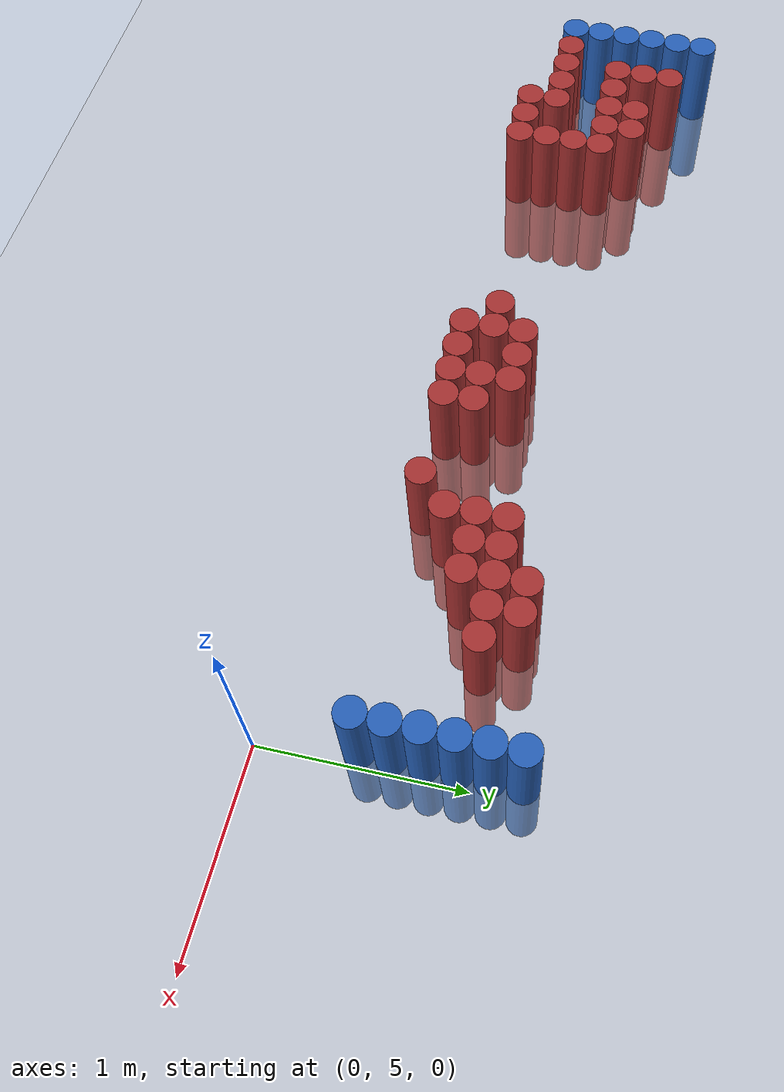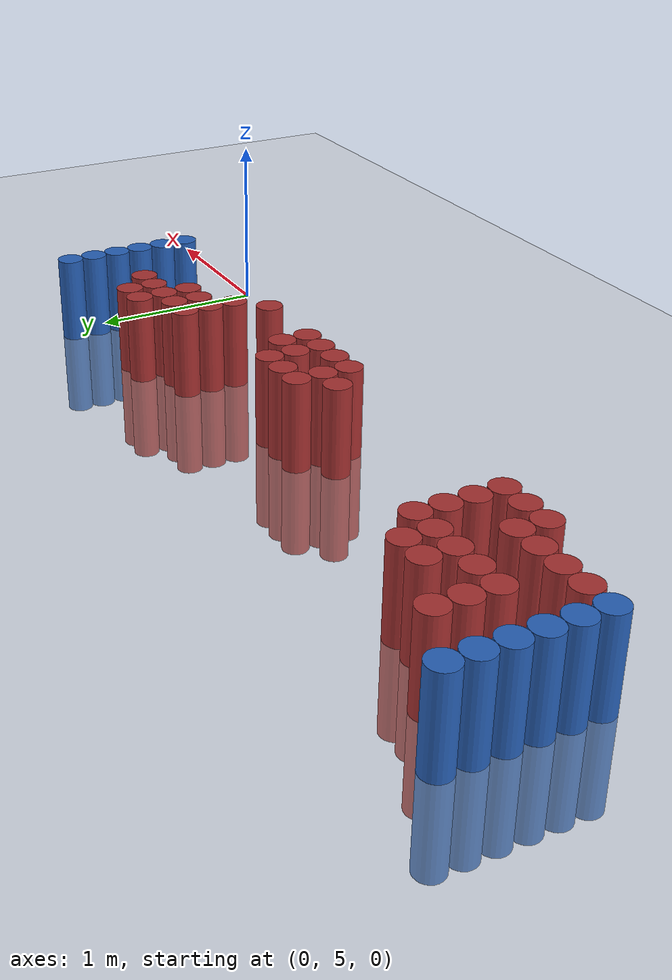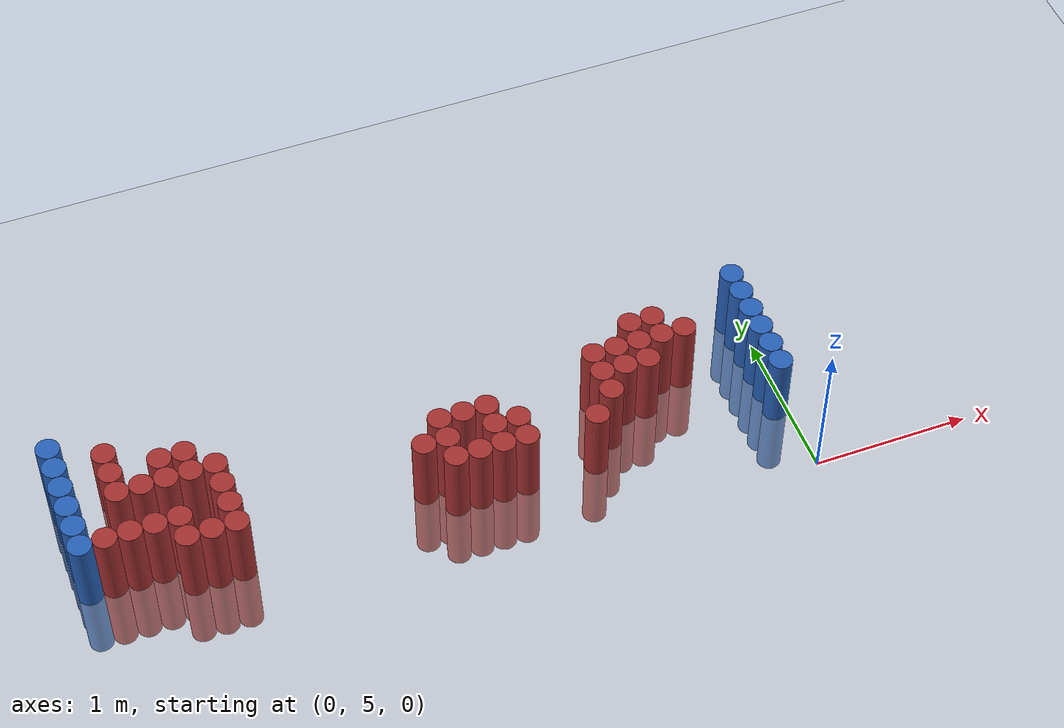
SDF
<sdf version="1.6">
 <world name="default">
  <model name="ground_plane">
   <static>1</static>
   <link name="link">
    <collision name="collision">
     <geometry><plane><normal>0 0 1</normal><size>100 100</size></plane></geometry>
     <surface><friction><ode><mu>100</mu><mu2>50</mu2></ode></friction></surface>
    </collision>
    <visual name="visual">
     <cast_shadows>0</cast_shadows>
     <geometry><plane><normal>0 0 1</normal><size>100 100</size></plane></geometry>
     <material>
      <script><uri>file://media/materials/scripts/gazebo.material</uri><name>Gazebo/Grey</name></script>
     </material>
    </visual>
   </link>
  </model>
  <model name="unit_cylinder_99">
   <static>1</static>
   <pose>-4.425000 5.625000 0.000000 0.000000 0.000000 0.000000</pose>
   <link name="link">
    <inertial>
     <mass>1</mass>
     <inertia><ixx>0.145833</ixx><ixy>0</ixy><ixz>0</ixz><iyy>0.145833</iyy><iyz>0</iyz><izz>0.125</izz></inertia>
    </inertial>
    <collision name="collision">
     <geometry><cylinder><radius>0.075000</radius><length>1</length></cylinder></geometry>
    </collision>
    <visual name="visual">
     <geometry><cylinder><radius>0.075000</radius><length>1</length></cylinder></geometry>
     <material>
      <ambient>0.152000 0.379000 0.720000 1</ambient>
      <diffuse>0.152000 0.379000 0.720000 1</diffuse>
     </material>
     <material>
      <script><name>Gazebo/Grey</name><uri>file://media/materials/scripts/gazebo.material</uri></script>
     </material>
    </visual>
   </link>
  </model>
  <model name="unit_cylinder_100">
   <static>1</static>
   <pose>-4.425000 5.775000 0.000000 0.000000 0.000000 0.000000</pose>
   <link name="link">
    <inertial>
     <mass>1</mass>
     <inertia><ixx>0.145833</ixx><ixy>0</ixy><ixz>0</ixz><iyy>0.145833</iyy><iyz>0</iyz><izz>0.125</izz></inertia>
    </inertial>
    <collision name="collision">
     <geometry><cylinder><radius>0.075000</radius><length>1</length></cylinder></geometry>
    </collision>
    <visual name="visual">
     <geometry><cylinder><radius>0.075000</radius><length>1</length></cylinder></geometry>
     <material>
      <ambient>0.152000 0.379000 0.720000 1</ambient>
      <diffuse>0.152000 0.379000 0.720000 1</diffuse>
     </material>
     <material>
      <script><name>Gazebo/Grey</name><uri>file://media/materials/scripts/gazebo.material</uri></script>
     </material>
    </visual>
   </link>
  </model>
  <model name="unit_cylinder_101">
   <static>1</static>
   <pose>-4.425000 5.925000 0.000000 0.000000 0.000000 0.000000</pose>
   <link name="link">
    <inertial>
     <mass>1</mass>
     <inertia><ixx>0.145833</ixx><ixy>0</ixy><ixz>0</ixz><iyy>0.145833</iyy><iyz>0</iyz><izz>0.125</izz></inertia>
    </inertial>
    <collision name="collision">
     <geometry><cylinder><radius>0.075000</radius><length>1</length></cylinder></geometry>
    </collision>
    <visual name="visual">
     <geometry><cylinder><radius>0.075000</radius><length>1</length></cylinder></geometry>
     <material>
      <ambient>0.152000 0.379000 0.720000 1</ambient>
      <diffuse>0.152000 0.379000 0.720000 1</diffuse>
     </material>
     <material>
      <script><name>Gazebo/Grey</name><uri>file://media/materials/scripts/gazebo.material</uri></script>
     </material>
    </visual>
   </link>
  </model>
  <model name="unit_cylinder_102">
   <static>1</static>
   <pose>-4.425000 6.075000 0.000000 0.000000 0.000000 0.000000</pose>
   <link name="link">
    <inertial>
     <mass>1</mass>
     <inertia><ixx>0.145833</ixx><ixy>0</ixy><ixz>0</ixz><iyy>0.145833</iyy><iyz>0</iyz><izz>0.125</izz></inertia>
    </inertial>
    <collision name="collision">
     <geometry><cylinder><radius>0.075000</radius><length>1</length></cylinder></geometry>
    </collision>
    <visual name="visual">
     <geometry><cylinder><radius>0.075000</radius><length>1</length></cylinder></geometry>
     <material>
      <ambient>0.152000 0.379000 0.720000 1</ambient>
      <diffuse>0.152000 0.379000 0.720000 1</diffuse>
     </material>
     <material>
      <script><name>Gazebo/Grey</name><uri>file://media/materials/scripts/gazebo.material</uri></script>
     </material>
    </visual>
   </link>
  </model>
  <model name="unit_cylinder_103">
   <static>1</static>
   <pose>-4.425000 6.225000 0.000000 0.000000 0.000000 0.000000</pose>
   <link name="link">
    <inertial>
     <mass>1</mass>
     <inertia><ixx>0.145833</ixx><ixy>0</ixy><ixz>0</ixz><iyy>0.145833</iyy><iyz>0</iyz><izz>0.125</izz></inertia>
    </inertial>
    <collision name="collision">
     <geometry><cylinder><radius>0.075000</radius><length>1</length></cylinder></geometry>
    </collision>
    <visual name="visual">
     <geometry><cylinder><radius>0.075000</radius><length>1</length></cylinder></geometry>
     <material>
      <ambient>0.152000 0.379000 0.720000 1</ambient>
      <diffuse>0.152000 0.379000 0.720000 1</diffuse>
     </material>
     <material>
      <script><name>Gazebo/Grey</name><uri>file://media/materials/scripts/gazebo.material</uri></script>
     </material>
    </visual>
   </link>
  </model>
  <model name="unit_cylinder_104">
   <static>1</static>
   <pose>-4.425000 6.375000 0.000000 0.000000 0.000000 0.000000</pose>
   <link name="link">
    <inertial>
     <mass>1</mass>
     <inertia><ixx>0.145833</ixx><ixy>0</ixy><ixz>0</ixz><iyy>0.145833</iyy><iyz>0</iyz><izz>0.125</izz></inertia>
    </inertial>
    <collision name="collision">
     <geometry><cylinder><radius>0.075000</radius><length>1</length></cylinder></geometry>
    </collision>
    <visual name="visual">
     <geometry><cylinder><radius>0.075000</radius><length>1</length></cylinder></geometry>
     <material>
      <ambient>0.152000 0.379000 0.720000 1</ambient>
      <diffuse>0.152000 0.379000 0.720000 1</diffuse>
     </material>
     <material>
      <script><name>Gazebo/Grey</name><uri>file://media/materials/scripts/gazebo.material</uri></script>
     </material>
    </visual>
   </link>
  </model>
  <model name="unit_cylinder_127">
   <static>1</static>
   <pose>-4.275000 5.625000 0.000000 0.000000 0.000000 0.000000</pose>
   <link name="link">
    <inertial>
     <mass>1</mass>
     <inertia><ixx>0.145833</ixx><ixy>0</ixy><ixz>0</ixz><iyy>0.145833</iyy><iyz>0</iyz><izz>0.125</izz></inertia>
    </inertial>
    <collision name="collision">
     <geometry><cylinder><radius>0.075000</radius><length>1</length></cylinder></geometry>
    </collision>
    <visual name="visual">
     <geometry><cylinder><radius>0.075000</radius><length>1</length></cylinder></geometry>
     <material>
      <ambient>0.648000 0.192000 0.192000 1</ambient>
      <diffuse>0.648000 0.192000 0.192000 1</diffuse>
     </material>
     <material>
      <script><name>Gazebo/Grey</name><uri>file://media/materials/scripts/gazebo.material</uri></script>
     </material>
    </visual>
   </link>
  </model>
  <model name="unit_cylinder_140">
   <static>1</static>
   <pose>-4.125000 5.625000 0.000000 0.000000 0.000000 0.000000</pose>
   <link name="link">
    <inertial>
     <mass>1</mass>
     <inertia><ixx>0.145833</ixx><ixy>0</ixy><ixz>0</ixz><iyy>0.145833</iyy><iyz>0</iyz><izz>0.125</izz></inertia>
    </inertial>
    <collision name="collision">
     <geometry><cylinder><radius>0.075000</radius><length>1</length></cylinder></geometry>
    </collision>
    <visual name="visual">
     <geometry><cylinder><radius>0.075000</radius><length>1</length></cylinder></geometry>
     <material>
      <ambient>0.648000 0.192000 0.192000 1</ambient>
      <diffuse>0.648000 0.192000 0.192000 1</diffuse>
     </material>
     <material>
      <script><name>Gazebo/Grey</name><uri>file://media/materials/scripts/gazebo.material</uri></script>
     </material>
    </visual>
   </link>
  </model>
  <model name="unit_cylinder_141">
   <static>1</static>
   <pose>-4.125000 5.925000 0.000000 0.000000 0.000000 0.000000</pose>
   <link name="link">
    <inertial>
     <mass>1</mass>
     <inertia><ixx>0.145833</ixx><ixy>0</ixy><ixz>0</ixz><iyy>0.145833</iyy><iyz>0</iyz><izz>0.125</izz></inertia>
    </inertial>
    <collision name="collision">
     <geometry><cylinder><radius>0.075000</radius><length>1</length></cylinder></geometry>
    </collision>
    <visual name="visual">
     <geometry><cylinder><radius>0.075000</radius><length>1</length></cylinder></geometry>
     <material>
      <ambient>0.648000 0.192000 0.192000 1</ambient>
      <diffuse>0.648000 0.192000 0.192000 1</diffuse>
     </material>
     <material>
      <script><name>Gazebo/Grey</name><uri>file://media/materials/scripts/gazebo.material</uri></script>
     </material>
    </visual>
   </link>
  </model>
  <model name="unit_cylinder_142">
   <static>1</static>
   <pose>-4.125000 6.075000 0.000000 0.000000 0.000000 0.000000</pose>
   <link name="link">
    <inertial>
     <mass>1</mass>
     <inertia><ixx>0.145833</ixx><ixy>0</ixy><ixz>0</ixz><iyy>0.145833</iyy><iyz>0</iyz><izz>0.125</izz></inertia>
    </inertial>
    <collision name="collision">
     <geometry><cylinder><radius>0.075000</radius><length>1</length></cylinder></geometry>
    </collision>
    <visual name="visual">
     <geometry><cylinder><radius>0.075000</radius><length>1</length></cylinder></geometry>
     <material>
      <ambient>0.648000 0.192000 0.192000 1</ambient>
      <diffuse>0.648000 0.192000 0.192000 1</diffuse>
     </material>
     <material>
      <script><name>Gazebo/Grey</name><uri>file://media/materials/scripts/gazebo.material</uri></script>
     </material>
    </visual>
   </link>
  </model>
  <model name="unit_cylinder_143">
   <static>1</static>
   <pose>-4.125000 6.225000 0.000000 0.000000 0.000000 0.000000</pose>
   <link name="link">
    <inertial>
     <mass>1</mass>
     <inertia><ixx>0.145833</ixx><ixy>0</ixy><ixz>0</ixz><iyy>0.145833</iyy><iyz>0</iyz><izz>0.125</izz></inertia>
    </inertial>
    <collision name="collision">
     <geometry><cylinder><radius>0.075000</radius><length>1</length></cylinder></geometry>
    </collision>
    <visual name="visual">
     <geometry><cylinder><radius>0.075000</radius><length>1</length></cylinder></geometry>
     <material>
      <ambient>0.648000 0.192000 0.192000 1</ambient>
      <diffuse>0.648000 0.192000 0.192000 1</diffuse>
     </material>
     <material>
      <script><name>Gazebo/Grey</name><uri>file://media/materials/scripts/gazebo.material</uri></script>
     </material>
    </visual>
   </link>
  </model>
  <model name="unit_cylinder_153">
   <static>1</static>
   <pose>-3.975000 5.625000 0.000000 0.000000 0.000000 0.000000</pose>
   <link name="link">
    <inertial>
     <mass>1</mass>
     <inertia><ixx>0.145833</ixx><ixy>0</ixy><ixz>0</ixz><iyy>0.145833</iyy><iyz>0</iyz><izz>0.125</izz></inertia>
    </inertial>
    <collision name="collision">
     <geometry><cylinder><radius>0.075000</radius><length>1</length></cylinder></geometry>
    </collision>
    <visual name="visual">
     <geometry><cylinder><radius>0.075000</radius><length>1</length></cylinder></geometry>
     <material>
      <ambient>0.648000 0.192000 0.192000 1</ambient>
      <diffuse>0.648000 0.192000 0.192000 1</diffuse>
     </material>
     <material>
      <script><name>Gazebo/Grey</name><uri>file://media/materials/scripts/gazebo.material</uri></script>
     </material>
    </visual>
   </link>
  </model>
  <model name="unit_cylinder_154">
   <static>1</static>
   <pose>-3.975000 5.925000 0.000000 0.000000 0.000000 0.000000</pose>
   <link name="link">
    <inertial>
     <mass>1</mass>
     <inertia><ixx>0.145833</ixx><ixy>0</ixy><ixz>0</ixz><iyy>0.145833</iyy><iyz>0</iyz><izz>0.125</izz></inertia>
    </inertial>
    <collision name="collision">
     <geometry><cylinder><radius>0.075000</radius><length>1</length></cylinder></geometry>
    </collision>
    <visual name="visual">
     <geometry><cylinder><radius>0.075000</radius><length>1</length></cylinder></geometry>
     <material>
      <ambient>0.648000 0.192000 0.192000 1</ambient>
      <diffuse>0.648000 0.192000 0.192000 1</diffuse>
     </material>
     <material>
      <script><name>Gazebo/Grey</name><uri>file://media/materials/scripts/gazebo.material</uri></script>
     </material>
    </visual>
   </link>
  </model>
  <model name="unit_cylinder_159">
   <static>1</static>
   <pose>-3.825000 5.475000 0.000000 0.000000 0.000000 0.000000</pose>
   <link name="link">
    <inertial>
     <mass>1</mass>
     <inertia><ixx>0.145833</ixx><ixy>0</ixy><ixz>0</ixz><iyy>0.145833</iyy><iyz>0</iyz><izz>0.125</izz></inertia>
    </inertial>
    <collision name="collision">
     <geometry><cylinder><radius>0.075000</radius><length>1</length></cylinder></geometry>
    </collision>
    <visual name="visual">
     <geometry><cylinder><radius>0.075000</radius><length>1</length></cylinder></geometry>
     <material>
      <ambient>0.648000 0.192000 0.192000 1</ambient>
      <diffuse>0.648000 0.192000 0.192000 1</diffuse>
     </material>
     <material>
      <script><name>Gazebo/Grey</name><uri>file://media/materials/scripts/gazebo.material</uri></script>
     </material>
    </visual>
   </link>
  </model>
  <model name="unit_cylinder_160">
   <static>1</static>
   <pose>-3.825000 5.625000 0.000000 0.000000 0.000000 0.000000</pose>
   <link name="link">
    <inertial>
     <mass>1</mass>
     <inertia><ixx>0.145833</ixx><ixy>0</ixy><ixz>0</ixz><iyy>0.145833</iyy><iyz>0</iyz><izz>0.125</izz></inertia>
    </inertial>
    <collision name="collision">
     <geometry><cylinder><radius>0.075000</radius><length>1</length></cylinder></geometry>
    </collision>
    <visual name="visual">
     <geometry><cylinder><radius>0.075000</radius><length>1</length></cylinder></geometry>
     <material>
      <ambient>0.648000 0.192000 0.192000 1</ambient>
      <diffuse>0.648000 0.192000 0.192000 1</diffuse>
     </material>
     <material>
      <script><name>Gazebo/Grey</name><uri>file://media/materials/scripts/gazebo.material</uri></script>
     </material>
    </visual>
   </link>
  </model>
  <model name="unit_cylinder_161">
   <static>1</static>
   <pose>-3.825000 5.925000 0.000000 0.000000 0.000000 0.000000</pose>
   <link name="link">
    <inertial>
     <mass>1</mass>
     <inertia><ixx>0.145833</ixx><ixy>0</ixy><ixz>0</ixz><iyy>0.145833</iyy><iyz>0</iyz><izz>0.125</izz></inertia>
    </inertial>
    <collision name="collision">
     <geometry><cylinder><radius>0.075000</radius><length>1</length></cylinder></geometry>
    </collision>
    <visual name="visual">
     <geometry><cylinder><radius>0.075000</radius><length>1</length></cylinder></geometry>
     <material>
      <ambient>0.648000 0.192000 0.192000 1</ambient>
      <diffuse>0.648000 0.192000 0.192000 1</diffuse>
     </material>
     <material>
      <script><name>Gazebo/Grey</name><uri>file://media/materials/scripts/gazebo.material</uri></script>
     </material>
    </visual>
   </link>
  </model>
  <model name="unit_cylinder_162">
   <static>1</static>
   <pose>-3.825000 6.075000 0.000000 0.000000 0.000000 0.000000</pose>
   <link name="link">
    <inertial>
     <mass>1</mass>
     <inertia><ixx>0.145833</ixx><ixy>0</ixy><ixz>0</ixz><iyy>0.145833</iyy><iyz>0</iyz><izz>0.125</izz></inertia>
    </inertial>
    <collision name="collision">
     <geometry><cylinder><radius>0.075000</radius><length>1</length></cylinder></geometry>
    </collision>
    <visual name="visual">
     <geometry><cylinder><radius>0.075000</radius><length>1</length></cylinder></geometry>
     <material>
      <ambient>0.648000 0.192000 0.192000 1</ambient>
      <diffuse>0.648000 0.192000 0.192000 1</diffuse>
     </material>
     <material>
      <script><name>Gazebo/Grey</name><uri>file://media/materials/scripts/gazebo.material</uri></script>
     </material>
    </visual>
   </link>
  </model>
  <model name="unit_cylinder_164">
   <static>1</static>
   <pose>-3.675000 5.475000 0.000000 0.000000 0.000000 0.000000</pose>
   <link name="link">
    <inertial>
     <mass>1</mass>
     <inertia><ixx>0.145833</ixx><ixy>0</ixy><ixz>0</ixz><iyy>0.145833</iyy><iyz>0</iyz><izz>0.125</izz></inertia>
    </inertial>
    <collision name="collision">
     <geometry><cylinder><radius>0.075000</radius><length>1</length></cylinder></geometry>
    </collision>
    <visual name="visual">
     <geometry><cylinder><radius>0.075000</radius><length>1</length></cylinder></geometry>
     <material>
      <ambient>0.648000 0.192000 0.192000 1</ambient>
      <diffuse>0.648000 0.192000 0.192000 1</diffuse>
     </material>
     <material>
      <script><name>Gazebo/Grey</name><uri>file://media/materials/scripts/gazebo.material</uri></script>
     </material>
    </visual>
   </link>
  </model>
  <model name="unit_cylinder_165">
   <static>1</static>
   <pose>-3.675000 5.925000 0.000000 0.000000 0.000000 0.000000</pose>
   <link name="link">
    <inertial>
     <mass>1</mass>
     <inertia><ixx>0.145833</ixx><ixy>0</ixy><ixz>0</ixz><iyy>0.145833</iyy><iyz>0</iyz><izz>0.125</izz></inertia>
    </inertial>
    <collision name="collision">
     <geometry><cylinder><radius>0.075000</radius><length>1</length></cylinder></geometry>
    </collision>
    <visual name="visual">
     <geometry><cylinder><radius>0.075000</radius><length>1</length></cylinder></geometry>
     <material>
      <ambient>0.648000 0.192000 0.192000 1</ambient>
      <diffuse>0.648000 0.192000 0.192000 1</diffuse>
     </material>
     <material>
      <script><name>Gazebo/Grey</name><uri>file://media/materials/scripts/gazebo.material</uri></script>
     </material>
    </visual>
   </link>
  </model>
  <model name="unit_cylinder_166">
   <static>1</static>
   <pose>-3.675000 6.075000 0.000000 0.000000 0.000000 0.000000</pose>
   <link name="link">
    <inertial>
     <mass>1</mass>
     <inertia><ixx>0.145833</ixx><ixy>0</ixy><ixz>0</ixz><iyy>0.145833</iyy><iyz>0</iyz><izz>0.125</izz></inertia>
    </inertial>
    <collision name="collision">
     <geometry><cylinder><radius>0.075000</radius><length>1</length></cylinder></geometry>
    </collision>
    <visual name="visual">
     <geometry><cylinder><radius>0.075000</radius><length>1</length></cylinder></geometry>
     <material>
      <ambient>0.648000 0.192000 0.192000 1</ambient>
      <diffuse>0.648000 0.192000 0.192000 1</diffuse>
     </material>
     <material>
      <script><name>Gazebo/Grey</name><uri>file://media/materials/scripts/gazebo.material</uri></script>
     </material>
    </visual>
   </link>
  </model>
  <model name="unit_cylinder_172">
   <static>1</static>
   <pose>-3.525000 5.475000 0.000000 0.000000 0.000000 0.000000</pose>
   <link name="link">
    <inertial>
     <mass>1</mass>
     <inertia><ixx>0.145833</ixx><ixy>0</ixy><ixz>0</ixz><iyy>0.145833</iyy><iyz>0</iyz><izz>0.125</izz></inertia>
    </inertial>
    <collision name="collision">
     <geometry><cylinder><radius>0.075000</radius><length>1</length></cylinder></geometry>
    </collision>
    <visual name="visual">
     <geometry><cylinder><radius>0.075000</radius><length>1</length></cylinder></geometry>
     <material>
      <ambient>0.648000 0.192000 0.192000 1</ambient>
      <diffuse>0.648000 0.192000 0.192000 1</diffuse>
     </material>
     <material>
      <script><name>Gazebo/Grey</name><uri>file://media/materials/scripts/gazebo.material</uri></script>
     </material>
    </visual>
   </link>
  </model>
  <model name="unit_cylinder_173">
   <static>1</static>
   <pose>-3.525000 5.625000 0.000000 0.000000 0.000000 0.000000</pose>
   <link name="link">
    <inertial>
     <mass>1</mass>
     <inertia><ixx>0.145833</ixx><ixy>0</ixy><ixz>0</ixz><iyy>0.145833</iyy><iyz>0</iyz><izz>0.125</izz></inertia>
    </inertial>
    <collision name="collision">
     <geometry><cylinder><radius>0.075000</radius><length>1</length></cylinder></geometry>
    </collision>
    <visual name="visual">
     <geometry><cylinder><radius>0.075000</radius><length>1</length></cylinder></geometry>
     <material>
      <ambient>0.648000 0.192000 0.192000 1</ambient>
      <diffuse>0.648000 0.192000 0.192000 1</diffuse>
     </material>
     <material>
      <script><name>Gazebo/Grey</name><uri>file://media/materials/scripts/gazebo.material</uri></script>
     </material>
    </visual>
   </link>
  </model>
  <model name="unit_cylinder_174">
   <static>1</static>
   <pose>-3.525000 5.775000 0.000000 0.000000 0.000000 0.000000</pose>
   <link name="link">
    <inertial>
     <mass>1</mass>
     <inertia><ixx>0.145833</ixx><ixy>0</ixy><ixz>0</ixz><iyy>0.145833</iyy><iyz>0</iyz><izz>0.125</izz></inertia>
    </inertial>
    <collision name="collision">
     <geometry><cylinder><radius>0.075000</radius><length>1</length></cylinder></geometry>
    </collision>
    <visual name="visual">
     <geometry><cylinder><radius>0.075000</radius><length>1</length></cylinder></geometry>
     <material>
      <ambient>0.648000 0.192000 0.192000 1</ambient>
      <diffuse>0.648000 0.192000 0.192000 1</diffuse>
     </material>
     <material>
      <script><name>Gazebo/Grey</name><uri>file://media/materials/scripts/gazebo.material</uri></script>
     </material>
    </visual>
   </link>
  </model>
  <model name="unit_cylinder_175">
   <static>1</static>
   <pose>-3.525000 5.925000 0.000000 0.000000 0.000000 0.000000</pose>
   <link name="link">
    <inertial>
     <mass>1</mass>
     <inertia><ixx>0.145833</ixx><ixy>0</ixy><ixz>0</ixz><iyy>0.145833</iyy><iyz>0</iyz><izz>0.125</izz></inertia>
    </inertial>
    <collision name="collision">
     <geometry><cylinder><radius>0.075000</radius><length>1</length></cylinder></geometry>
    </collision>
    <visual name="visual">
     <geometry><cylinder><radius>0.075000</radius><length>1</length></cylinder></geometry>
     <material>
      <ambient>0.648000 0.192000 0.192000 1</ambient>
      <diffuse>0.648000 0.192000 0.192000 1</diffuse>
     </material>
     <material>
      <script><name>Gazebo/Grey</name><uri>file://media/materials/scripts/gazebo.material</uri></script>
     </material>
    </visual>
   </link>
  </model>
  <model name="unit_cylinder_213">
   <static>1</static>
   <pose>-2.325000 5.625000 0.000000 0.000000 0.000000 0.000000</pose>
   <link name="link">
    <inertial>
     <mass>1</mass>
     <inertia><ixx>0.145833</ixx><ixy>0</ixy><ixz>0</ixz><iyy>0.145833</iyy><iyz>0</iyz><izz>0.125</izz></inertia>
    </inertial>
    <collision name="collision">
     <geometry><cylinder><radius>0.075000</radius><length>1</length></cylinder></geometry>
    </collision>
    <visual name="visual">
     <geometry><cylinder><radius>0.075000</radius><length>1</length></cylinder></geometry>
     <material>
      <ambient>0.648000 0.192000 0.192000 1</ambient>
      <diffuse>0.648000 0.192000 0.192000 1</diffuse>
     </material>
     <material>
      <script><name>Gazebo/Grey</name><uri>file://media/materials/scripts/gazebo.material</uri></script>
     </material>
    </visual>
   </link>
  </model>
  <model name="unit_cylinder_218">
   <static>1</static>
   <pose>-2.175000 5.475000 0.000000 0.000000 0.000000 0.000000</pose>
   <link name="link">
    <inertial>
     <mass>1</mass>
     <inertia><ixx>0.145833</ixx><ixy>0</ixy><ixz>0</ixz><iyy>0.145833</iyy><iyz>0</iyz><izz>0.125</izz></inertia>
    </inertial>
    <collision name="collision">
     <geometry><cylinder><radius>0.075000</radius><length>1</length></cylinder></geometry>
    </collision>
    <visual name="visual">
     <geometry><cylinder><radius>0.075000</radius><length>1</length></cylinder></geometry>
     <material>
      <ambient>0.648000 0.192000 0.192000 1</ambient>
      <diffuse>0.648000 0.192000 0.192000 1</diffuse>
     </material>
     <material>
      <script><name>Gazebo/Grey</name><uri>file://media/materials/scripts/gazebo.material</uri></script>
     </material>
    </visual>
   </link>
  </model>
  <model name="unit_cylinder_219">
   <static>1</static>
   <pose>-2.175000 5.625000 0.000000 0.000000 0.000000 0.000000</pose>
   <link name="link">
    <inertial>
     <mass>1</mass>
     <inertia><ixx>0.145833</ixx><ixy>0</ixy><ixz>0</ixz><iyy>0.145833</iyy><iyz>0</iyz><izz>0.125</izz></inertia>
    </inertial>
    <collision name="collision">
     <geometry><cylinder><radius>0.075000</radius><length>1</length></cylinder></geometry>
    </collision>
    <visual name="visual">
     <geometry><cylinder><radius>0.075000</radius><length>1</length></cylinder></geometry>
     <material>
      <ambient>0.648000 0.192000 0.192000 1</ambient>
      <diffuse>0.648000 0.192000 0.192000 1</diffuse>
     </material>
     <material>
      <script><name>Gazebo/Grey</name><uri>file://media/materials/scripts/gazebo.material</uri></script>
     </material>
    </visual>
   </link>
  </model>
  <model name="unit_cylinder_220">
   <static>1</static>
   <pose>-2.175000 5.775000 0.000000 0.000000 0.000000 0.000000</pose>
   <link name="link">
    <inertial>
     <mass>1</mass>
     <inertia><ixx>0.145833</ixx><ixy>0</ixy><ixz>0</ixz><iyy>0.145833</iyy><iyz>0</iyz><izz>0.125</izz></inertia>
    </inertial>
    <collision name="collision">
     <geometry><cylinder><radius>0.075000</radius><length>1</length></cylinder></geometry>
    </collision>
    <visual name="visual">
     <geometry><cylinder><radius>0.075000</radius><length>1</length></cylinder></geometry>
     <material>
      <ambient>0.648000 0.192000 0.192000 1</ambient>
      <diffuse>0.648000 0.192000 0.192000 1</diffuse>
     </material>
     <material>
      <script><name>Gazebo/Grey</name><uri>file://media/materials/scripts/gazebo.material</uri></script>
     </material>
    </visual>
   </link>
  </model>
  <model name="unit_cylinder_225">
   <static>1</static>
   <pose>-2.025000 5.475000 0.000000 0.000000 0.000000 0.000000</pose>
   <link name="link">
    <inertial>
     <mass>1</mass>
     <inertia><ixx>0.145833</ixx><ixy>0</ixy><ixz>0</ixz><iyy>0.145833</iyy><iyz>0</iyz><izz>0.125</izz></inertia>
    </inertial>
    <collision name="collision">
     <geometry><cylinder><radius>0.075000</radius><length>1</length></cylinder></geometry>
    </collision>
    <visual name="visual">
     <geometry><cylinder><radius>0.075000</radius><length>1</length></cylinder></geometry>
     <material>
      <ambient>0.648000 0.192000 0.192000 1</ambient>
      <diffuse>0.648000 0.192000 0.192000 1</diffuse>
     </material>
     <material>
      <script><name>Gazebo/Grey</name><uri>file://media/materials/scripts/gazebo.material</uri></script>
     </material>
    </visual>
   </link>
  </model>
  <model name="unit_cylinder_226">
   <static>1</static>
   <pose>-2.025000 5.775000 0.000000 0.000000 0.000000 0.000000</pose>
   <link name="link">
    <inertial>
     <mass>1</mass>
     <inertia><ixx>0.145833</ixx><ixy>0</ixy><ixz>0</ixz><iyy>0.145833</iyy><iyz>0</iyz><izz>0.125</izz></inertia>
    </inertial>
    <collision name="collision">
     <geometry><cylinder><radius>0.075000</radius><length>1</length></cylinder></geometry>
    </collision>
    <visual name="visual">
     <geometry><cylinder><radius>0.075000</radius><length>1</length></cylinder></geometry>
     <material>
      <ambient>0.648000 0.192000 0.192000 1</ambient>
      <diffuse>0.648000 0.192000 0.192000 1</diffuse>
     </material>
     <material>
      <script><name>Gazebo/Grey</name><uri>file://media/materials/scripts/gazebo.material</uri></script>
     </material>
    </visual>
   </link>
  </model>
  <model name="unit_cylinder_235">
   <static>1</static>
   <pose>-1.875000 5.475000 0.000000 0.000000 0.000000 0.000000</pose>
   <link name="link">
    <inertial>
     <mass>1</mass>
     <inertia><ixx>0.145833</ixx><ixy>0</ixy><ixz>0</ixz><iyy>0.145833</iyy><iyz>0</iyz><izz>0.125</izz></inertia>
    </inertial>
    <collision name="collision">
     <geometry><cylinder><radius>0.075000</radius><length>1</length></cylinder></geometry>
    </collision>
    <visual name="visual">
     <geometry><cylinder><radius>0.075000</radius><length>1</length></cylinder></geometry>
     <material>
      <ambient>0.648000 0.192000 0.192000 1</ambient>
      <diffuse>0.648000 0.192000 0.192000 1</diffuse>
     </material>
     <material>
      <script><name>Gazebo/Grey</name><uri>file://media/materials/scripts/gazebo.material</uri></script>
     </material>
    </visual>
   </link>
  </model>
  <model name="unit_cylinder_236">
   <static>1</static>
   <pose>-1.875000 5.625000 0.000000 0.000000 0.000000 0.000000</pose>
   <link name="link">
    <inertial>
     <mass>1</mass>
     <inertia><ixx>0.145833</ixx><ixy>0</ixy><ixz>0</ixz><iyy>0.145833</iyy><iyz>0</iyz><izz>0.125</izz></inertia>
    </inertial>
    <collision name="collision">
     <geometry><cylinder><radius>0.075000</radius><length>1</length></cylinder></geometry>
    </collision>
    <visual name="visual">
     <geometry><cylinder><radius>0.075000</radius><length>1</length></cylinder></geometry>
     <material>
      <ambient>0.648000 0.192000 0.192000 1</ambient>
      <diffuse>0.648000 0.192000 0.192000 1</diffuse>
     </material>
     <material>
      <script><name>Gazebo/Grey</name><uri>file://media/materials/scripts/gazebo.material</uri></script>
     </material>
    </visual>
   </link>
  </model>
  <model name="unit_cylinder_237">
   <static>1</static>
   <pose>-1.875000 5.775000 0.000000 0.000000 0.000000 0.000000</pose>
   <link name="link">
    <inertial>
     <mass>1</mass>
     <inertia><ixx>0.145833</ixx><ixy>0</ixy><ixz>0</ixz><iyy>0.145833</iyy><iyz>0</iyz><izz>0.125</izz></inertia>
    </inertial>
    <collision name="collision">
     <geometry><cylinder><radius>0.075000</radius><length>1</length></cylinder></geometry>
    </collision>
    <visual name="visual">
     <geometry><cylinder><radius>0.075000</radius><length>1</length></cylinder></geometry>
     <material>
      <ambient>0.648000 0.192000 0.192000 1</ambient>
      <diffuse>0.648000 0.192000 0.192000 1</diffuse>
     </material>
     <material>
      <script><name>Gazebo/Grey</name><uri>file://media/materials/scripts/gazebo.material</uri></script>
     </material>
    </visual>
   </link>
  </model>
  <model name="unit_cylinder_244">
   <static>1</static>
   <pose>-1.725000 5.475000 0.000000 0.000000 0.000000 0.000000</pose>
   <link name="link">
    <inertial>
     <mass>1</mass>
     <inertia><ixx>0.145833</ixx><ixy>0</ixy><ixz>0</ixz><iyy>0.145833</iyy><iyz>0</iyz><izz>0.125</izz></inertia>
    </inertial>
    <collision name="collision">
     <geometry><cylinder><radius>0.075000</radius><length>1</length></cylinder></geometry>
    </collision>
    <visual name="visual">
     <geometry><cylinder><radius>0.075000</radius><length>1</length></cylinder></geometry>
     <material>
      <ambient>0.648000 0.192000 0.192000 1</ambient>
      <diffuse>0.648000 0.192000 0.192000 1</diffuse>
     </material>
     <material>
      <script><name>Gazebo/Grey</name><uri>file://media/materials/scripts/gazebo.material</uri></script>
     </material>
    </visual>
   </link>
  </model>
  <model name="unit_cylinder_245">
   <static>1</static>
   <pose>-1.725000 5.625000 0.000000 0.000000 0.000000 0.000000</pose>
   <link name="link">
    <inertial>
     <mass>1</mass>
     <inertia><ixx>0.145833</ixx><ixy>0</ixy><ixz>0</ixz><iyy>0.145833</iyy><iyz>0</iyz><izz>0.125</izz></inertia>
    </inertial>
    <collision name="collision">
     <geometry><cylinder><radius>0.075000</radius><length>1</length></cylinder></geometry>
    </collision>
    <visual name="visual">
     <geometry><cylinder><radius>0.075000</radius><length>1</length></cylinder></geometry>
     <material>
      <ambient>0.648000 0.192000 0.192000 1</ambient>
      <diffuse>0.648000 0.192000 0.192000 1</diffuse>
     </material>
     <material>
      <script><name>Gazebo/Grey</name><uri>file://media/materials/scripts/gazebo.material</uri></script>
     </material>
    </visual>
   </link>
  </model>
  <model name="unit_cylinder_251">
   <static>1</static>
   <pose>-1.275000 5.475000 0.000000 0.000000 0.000000 0.000000</pose>
   <link name="link">
    <inertial>
     <mass>1</mass>
     <inertia><ixx>0.145833</ixx><ixy>0</ixy><ixz>0</ixz><iyy>0.145833</iyy><iyz>0</iyz><izz>0.125</izz></inertia>
    </inertial>
    <collision name="collision">
     <geometry><cylinder><radius>0.075000</radius><length>1</length></cylinder></geometry>
    </collision>
    <visual name="visual">
     <geometry><cylinder><radius>0.075000</radius><length>1</length></cylinder></geometry>
     <material>
      <ambient>0.648000 0.192000 0.192000 1</ambient>
      <diffuse>0.648000 0.192000 0.192000 1</diffuse>
     </material>
     <material>
      <script><name>Gazebo/Grey</name><uri>file://media/materials/scripts/gazebo.material</uri></script>
     </material>
    </visual>
   </link>
  </model>
  <model name="unit_cylinder_253">
   <static>1</static>
   <pose>-1.125000 5.625000 0.000000 0.000000 0.000000 0.000000</pose>
   <link name="link">
    <inertial>
     <mass>1</mass>
     <inertia><ixx>0.145833</ixx><ixy>0</ixy><ixz>0</ixz><iyy>0.145833</iyy><iyz>0</iyz><izz>0.125</izz></inertia>
    </inertial>
    <collision name="collision">
     <geometry><cylinder><radius>0.075000</radius><length>1</length></cylinder></geometry>
    </collision>
    <visual name="visual">
     <geometry><cylinder><radius>0.075000</radius><length>1</length></cylinder></geometry>
     <material>
      <ambient>0.648000 0.192000 0.192000 1</ambient>
      <diffuse>0.648000 0.192000 0.192000 1</diffuse>
     </material>
     <material>
      <script><name>Gazebo/Grey</name><uri>file://media/materials/scripts/gazebo.material</uri></script>
     </material>
    </visual>
   </link>
  </model>
  <model name="unit_cylinder_254">
   <static>1</static>
   <pose>-1.125000 5.775000 0.000000 0.000000 0.000000 0.000000</pose>
   <link name="link">
    <inertial>
     <mass>1</mass>
     <inertia><ixx>0.145833</ixx><ixy>0</ixy><ixz>0</ixz><iyy>0.145833</iyy><iyz>0</iyz><izz>0.125</izz></inertia>
    </inertial>
    <collision name="collision">
     <geometry><cylinder><radius>0.075000</radius><length>1</length></cylinder></geometry>
    </collision>
    <visual name="visual">
     <geometry><cylinder><radius>0.075000</radius><length>1</length></cylinder></geometry>
     <material>
      <ambient>0.648000 0.192000 0.192000 1</ambient>
      <diffuse>0.648000 0.192000 0.192000 1</diffuse>
     </material>
     <material>
      <script><name>Gazebo/Grey</name><uri>file://media/materials/scripts/gazebo.material</uri></script>
     </material>
    </visual>
   </link>
  </model>
  <model name="unit_cylinder_255">
   <static>1</static>
   <pose>-1.125000 5.925000 0.000000 0.000000 0.000000 0.000000</pose>
   <link name="link">
    <inertial>
     <mass>1</mass>
     <inertia><ixx>0.145833</ixx><ixy>0</ixy><ixz>0</ixz><iyy>0.145833</iyy><iyz>0</iyz><izz>0.125</izz></inertia>
    </inertial>
    <collision name="collision">
     <geometry><cylinder><radius>0.075000</radius><length>1</length></cylinder></geometry>
    </collision>
    <visual name="visual">
     <geometry><cylinder><radius>0.075000</radius><length>1</length></cylinder></geometry>
     <material>
      <ambient>0.648000 0.192000 0.192000 1</ambient>
      <diffuse>0.648000 0.192000 0.192000 1</diffuse>
     </material>
     <material>
      <script><name>Gazebo/Grey</name><uri>file://media/materials/scripts/gazebo.material</uri></script>
     </material>
    </visual>
   </link>
  </model>
  <model name="unit_cylinder_256">
   <static>1</static>
   <pose>-0.975000 5.775000 0.000000 0.000000 0.000000 0.000000</pose>
   <link name="link">
    <inertial>
     <mass>1</mass>
     <inertia><ixx>0.145833</ixx><ixy>0</ixy><ixz>0</ixz><iyy>0.145833</iyy><iyz>0</iyz><izz>0.125</izz></inertia>
    </inertial>
    <collision name="collision">
     <geometry><cylinder><radius>0.075000</radius><length>1</length></cylinder></geometry>
    </collision>
    <visual name="visual">
     <geometry><cylinder><radius>0.075000</radius><length>1</length></cylinder></geometry>
     <material>
      <ambient>0.648000 0.192000 0.192000 1</ambient>
      <diffuse>0.648000 0.192000 0.192000 1</diffuse>
     </material>
     <material>
      <script><name>Gazebo/Grey</name><uri>file://media/materials/scripts/gazebo.material</uri></script>
     </material>
    </visual>
   </link>
  </model>
  <model name="unit_cylinder_257">
   <static>1</static>
   <pose>-0.975000 5.925000 0.000000 0.000000 0.000000 0.000000</pose>
   <link name="link">
    <inertial>
     <mass>1</mass>
     <inertia><ixx>0.145833</ixx><ixy>0</ixy><ixz>0</ixz><iyy>0.145833</iyy><iyz>0</iyz><izz>0.125</izz></inertia>
    </inertial>
    <collision name="collision">
     <geometry><cylinder><radius>0.075000</radius><length>1</length></cylinder></geometry>
    </collision>
    <visual name="visual">
     <geometry><cylinder><radius>0.075000</radius><length>1</length></cylinder></geometry>
     <material>
      <ambient>0.648000 0.192000 0.192000 1</ambient>
      <diffuse>0.648000 0.192000 0.192000 1</diffuse>
     </material>
     <material>
      <script><name>Gazebo/Grey</name><uri>file://media/materials/scripts/gazebo.material</uri></script>
     </material>
    </visual>
   </link>
  </model>
  <model name="unit_cylinder_258">
   <static>1</static>
   <pose>-0.825000 5.775000 0.000000 0.000000 0.000000 0.000000</pose>
   <link name="link">
    <inertial>
     <mass>1</mass>
     <inertia><ixx>0.145833</ixx><ixy>0</ixy><ixz>0</ixz><iyy>0.145833</iyy><iyz>0</iyz><izz>0.125</izz></inertia>
    </inertial>
    <collision name="collision">
     <geometry><cylinder><radius>0.075000</radius><length>1</length></cylinder></geometry>
    </collision>
    <visual name="visual">
     <geometry><cylinder><radius>0.075000</radius><length>1</length></cylinder></geometry>
     <material>
      <ambient>0.648000 0.192000 0.192000 1</ambient>
      <diffuse>0.648000 0.192000 0.192000 1</diffuse>
     </material>
     <material>
      <script><name>Gazebo/Grey</name><uri>file://media/materials/scripts/gazebo.material</uri></script>
     </material>
    </visual>
   </link>
  </model>
  <model name="unit_cylinder_259">
   <static>1</static>
   <pose>-0.825000 5.925000 0.000000 0.000000 0.000000 0.000000</pose>
   <link name="link">
    <inertial>
     <mass>1</mass>
     <inertia><ixx>0.145833</ixx><ixy>0</ixy><ixz>0</ixz><iyy>0.145833</iyy><iyz>0</iyz><izz>0.125</izz></inertia>
    </inertial>
    <collision name="collision">
     <geometry><cylinder><radius>0.075000</radius><length>1</length></cylinder></geometry>
    </collision>
    <visual name="visual">
     <geometry><cylinder><radius>0.075000</radius><length>1</length></cylinder></geometry>
     <material>
      <ambient>0.648000 0.192000 0.192000 1</ambient>
      <diffuse>0.648000 0.192000 0.192000 1</diffuse>
     </material>
     <material>
      <script><name>Gazebo/Grey</name><uri>file://media/materials/scripts/gazebo.material</uri></script>
     </material>
    </visual>
   </link>
  </model>
  <model name="unit_cylinder_260">
   <static>1</static>
   <pose>-0.825000 6.075000 0.000000 0.000000 0.000000 0.000000</pose>
   <link name="link">
    <inertial>
     <mass>1</mass>
     <inertia><ixx>0.145833</ixx><ixy>0</ixy><ixz>0</ixz><iyy>0.145833</iyy><iyz>0</iyz><izz>0.125</izz></inertia>
    </inertial>
    <collision name="collision">
     <geometry><cylinder><radius>0.075000</radius><length>1</length></cylinder></geometry>
    </collision>
    <visual name="visual">
     <geometry><cylinder><radius>0.075000</radius><length>1</length></cylinder></geometry>
     <material>
      <ambient>0.648000 0.192000 0.192000 1</ambient>
      <diffuse>0.648000 0.192000 0.192000 1</diffuse>
     </material>
     <material>
      <script><name>Gazebo/Grey</name><uri>file://media/materials/scripts/gazebo.material</uri></script>
     </material>
    </visual>
   </link>
  </model>
  <model name="unit_cylinder_267">
   <static>1</static>
   <pose>-0.675000 5.925000 0.000000 0.000000 0.000000 0.000000</pose>
   <link name="link">
    <inertial>
     <mass>1</mass>
     <inertia><ixx>0.145833</ixx><ixy>0</ixy><ixz>0</ixz><iyy>0.145833</iyy><iyz>0</iyz><izz>0.125</izz></inertia>
    </inertial>
    <collision name="collision">
     <geometry><cylinder><radius>0.075000</radius><length>1</length></cylinder></geometry>
    </collision>
    <visual name="visual">
     <geometry><cylinder><radius>0.075000</radius><length>1</length></cylinder></geometry>
     <material>
      <ambient>0.648000 0.192000 0.192000 1</ambient>
      <diffuse>0.648000 0.192000 0.192000 1</diffuse>
     </material>
     <material>
      <script><name>Gazebo/Grey</name><uri>file://media/materials/scripts/gazebo.material</uri></script>
     </material>
    </visual>
   </link>
  </model>
  <model name="unit_cylinder_268">
   <static>1</static>
   <pose>-0.675000 6.075000 0.000000 0.000000 0.000000 0.000000</pose>
   <link name="link">
    <inertial>
     <mass>1</mass>
     <inertia><ixx>0.145833</ixx><ixy>0</ixy><ixz>0</ixz><iyy>0.145833</iyy><iyz>0</iyz><izz>0.125</izz></inertia>
    </inertial>
    <collision name="collision">
     <geometry><cylinder><radius>0.075000</radius><length>1</length></cylinder></geometry>
    </collision>
    <visual name="visual">
     <geometry><cylinder><radius>0.075000</radius><length>1</length></cylinder></geometry>
     <material>
      <ambient>0.648000 0.192000 0.192000 1</ambient>
      <diffuse>0.648000 0.192000 0.192000 1</diffuse>
     </material>
     <material>
      <script><name>Gazebo/Grey</name><uri>file://media/materials/scripts/gazebo.material</uri></script>
     </material>
    </visual>
   </link>
  </model>
  <model name="unit_cylinder_274">
   <static>1</static>
   <pose>-0.525000 5.925000 0.000000 0.000000 0.000000 0.000000</pose>
   <link name="link">
    <inertial>
     <mass>1</mass>
     <inertia><ixx>0.145833</ixx><ixy>0</ixy><ixz>0</ixz><iyy>0.145833</iyy><iyz>0</iyz><izz>0.125</izz></inertia>
    </inertial>
    <collision name="collision">
     <geometry><cylinder><radius>0.075000</radius><length>1</length></cylinder></geometry>
    </collision>
    <visual name="visual">
     <geometry><cylinder><radius>0.075000</radius><length>1</length></cylinder></geometry>
     <material>
      <ambient>0.648000 0.192000 0.192000 1</ambient>
      <diffuse>0.648000 0.192000 0.192000 1</diffuse>
     </material>
     <material>
      <script><name>Gazebo/Grey</name><uri>file://media/materials/scripts/gazebo.material</uri></script>
     </material>
    </visual>
   </link>
  </model>
  <model name="unit_cylinder_291">
   <static>1</static>
   <pose>-0.075000 5.475000 0.000000 0.000000 0.000000 0.000000</pose>
   <link name="link">
    <inertial>
     <mass>1</mass>
     <inertia><ixx>0.145833</ixx><ixy>0</ixy><ixz>0</ixz><iyy>0.145833</iyy><iyz>0</iyz><izz>0.125</izz></inertia>
    </inertial>
    <collision name="collision">
     <geometry><cylinder><radius>0.075000</radius><length>1</length></cylinder></geometry>
    </collision>
    <visual name="visual">
     <geometry><cylinder><radius>0.075000</radius><length>1</length></cylinder></geometry>
     <material>
      <ambient>0.152000 0.379000 0.720000 1</ambient>
      <diffuse>0.152000 0.379000 0.720000 1</diffuse>
     </material>
     <material>
      <script><name>Gazebo/Grey</name><uri>file://media/materials/scripts/gazebo.material</uri></script>
     </material>
    </visual>
   </link>
  </model>
  <model name="unit_cylinder_292">
   <static>1</static>
   <pose>-0.075000 5.625000 0.000000 0.000000 0.000000 0.000000</pose>
   <link name="link">
    <inertial>
     <mass>1</mass>
     <inertia><ixx>0.145833</ixx><ixy>0</ixy><ixz>0</ixz><iyy>0.145833</iyy><iyz>0</iyz><izz>0.125</izz></inertia>
    </inertial>
    <collision name="collision">
     <geometry><cylinder><radius>0.075000</radius><length>1</length></cylinder></geometry>
    </collision>
    <visual name="visual">
     <geometry><cylinder><radius>0.075000</radius><length>1</length></cylinder></geometry>
     <material>
      <ambient>0.152000 0.379000 0.720000 1</ambient>
      <diffuse>0.152000 0.379000 0.720000 1</diffuse>
     </material>
     <material>
      <script><name>Gazebo/Grey</name><uri>file://media/materials/scripts/gazebo.material</uri></script>
     </material>
    </visual>
   </link>
  </model>
  <model name="unit_cylinder_293">
   <static>1</static>
   <pose>-0.075000 5.775000 0.000000 0.000000 0.000000 0.000000</pose>
   <link name="link">
    <inertial>
     <mass>1</mass>
     <inertia><ixx>0.145833</ixx><ixy>0</ixy><ixz>0</ixz><iyy>0.145833</iyy><iyz>0</iyz><izz>0.125</izz></inertia>
    </inertial>
    <collision name="collision">
     <geometry><cylinder><radius>0.075000</radius><length>1</length></cylinder></geometry>
    </collision>
    <visual name="visual">
     <geometry><cylinder><radius>0.075000</radius><length>1</length></cylinder></geometry>
     <material>
      <ambient>0.152000 0.379000 0.720000 1</ambient>
      <diffuse>0.152000 0.379000 0.720000 1</diffuse>
     </material>
     <material>
      <script><name>Gazebo/Grey</name><uri>file://media/materials/scripts/gazebo.material</uri></script>
     </material>
    </visual>
   </link>
  </model>
  <model name="unit_cylinder_294">
   <static>1</static>
   <pose>-0.075000 5.925000 0.000000 0.000000 0.000000 0.000000</pose>
   <link name="link">
    <inertial>
     <mass>1</mass>
     <inertia><ixx>0.145833</ixx><ixy>0</ixy><ixz>0</ixz><iyy>0.145833</iyy><iyz>0</iyz><izz>0.125</izz></inertia>
    </inertial>
    <collision name="collision">
     <geometry><cylinder><radius>0.075000</radius><length>1</length></cylinder></geometry>
    </collision>
    <visual name="visual">
     <geometry><cylinder><radius>0.075000</radius><length>1</length></cylinder></geometry>
     <material>
      <ambient>0.152000 0.379000 0.720000 1</ambient>
      <diffuse>0.152000 0.379000 0.720000 1</diffuse>
     </material>
     <material>
      <script><name>Gazebo/Grey</name><uri>file://media/materials/scripts/gazebo.material</uri></script>
     </material>
    </visual>
   </link>
  </model>
  <model name="unit_cylinder_295">
   <static>1</static>
   <pose>-0.075000 6.075000 0.000000 0.000000 0.000000 0.000000</pose>
   <link name="link">
    <inertial>
     <mass>1</mass>
     <inertia><ixx>0.145833</ixx><ixy>0</ixy><ixz>0</ixz><iyy>0.145833</iyy><iyz>0</iyz><izz>0.125</izz></inertia>
    </inertial>
    <collision name="collision">
     <geometry><cylinder><radius>0.075000</radius><length>1</length></cylinder></geometry>
    </collision>
    <visual name="visual">
     <geometry><cylinder><radius>0.075000</radius><length>1</length></cylinder></geometry>
     <material>
      <ambient>0.152000 0.379000 0.720000 1</ambient>
      <diffuse>0.152000 0.379000 0.720000 1</diffuse>
     </material>
     <material>
      <script><name>Gazebo/Grey</name><uri>file://media/materials/scripts/gazebo.material</uri></script>
     </material>
    </visual>
   </link>
  </model>
  <model name="unit_cylinder_296">
   <static>1</static>
   <pose>-0.075000 6.225000 0.000000 0.000000 0.000000 0.000000</pose>
   <link name="link">
    <inertial>
     <mass>1</mass>
     <inertia><ixx>0.145833</ixx><ixy>0</ixy><ixz>0</ixz><iyy>0.145833</iyy><iyz>0</iyz><izz>0.125</izz></inertia>
    </inertial>
    <collision name="collision">
     <geometry><cylinder><radius>0.075000</radius><length>1</length></cylinder></geometry>
    </collision>
    <visual name="visual">
     <geometry><cylinder><radius>0.075000</radius><length>1</length></cylinder></geometry>
     <material>
      <ambient>0.152000 0.379000 0.720000 1</ambient>
      <diffuse>0.152000 0.379000 0.720000 1</diffuse>
     </material>
     <material>
      <script><name>Gazebo/Grey</name><uri>file://media/materials/scripts/gazebo.material</uri></script>
     </material>
    </visual>
   </link>
  </model>
 </world>
</sdf>
